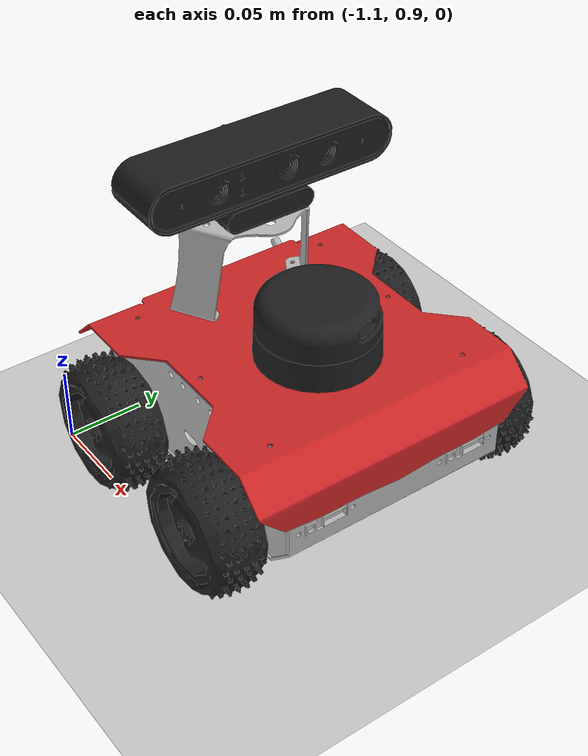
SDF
<sdf version="1.7">
 <world name="default">
  <model name="ground_plane">
   <static>1</static>
   <link name="link">
    <collision name="collision">
     <geometry><plane><normal>0 0 1</normal><size>100 100</size></plane></geometry>
     <surface>
      <contact><collide_bitmask>65535</collide_bitmask></contact>
      <friction><ode><mu>100</mu><mu2>50</mu2></ode></friction>
     </surface>
    </collision>
    <visual name="visual">
     <cast_shadows>0</cast_shadows>
     <geometry><plane><normal>0 0 1</normal><size>100 100</size></plane></geometry>
     <material>
      <script><uri>file://media/materials/scripts/gazebo.material</uri><name>Gazebo/Grey</name></script>
     </material>
    </visual>
   </link>
  </model>
  <model name="Robot2">
   <link name="base_link">
    <inertial>
     <pose>-0 0 0.04003 0 -0 0</pose>
     <mass>5.01002</mass>
     <inertia>
      <ixx>0.0100024</ixx>
      <ixy>0.01</ixy>
      <ixz>3.8397e-08</ixz>
      <iyy>0.0100025</iyy>
      <iyz>0.01</iyz>
      <izz>0.01</izz>
     </inertia>
    </inertial>
    <collision name="base_link_fixed_joint_lump__body_link_collision">
     <pose>0 0 0.02 0 -0 0</pose>
     <geometry><box><size>0.2 0.15 0.04</size></box></geometry>
    </collision>
    <collision name="base_link_fixed_joint_lump__camera_link_collision_1">
     <pose>-0.01 0 0.18 0 -0 0</pose>
     <geometry><box><size>0.001 0.001 0.001</size></box></geometry>
    </collision>
    <collision name="base_link_fixed_joint_lump__laser_collision_2">
     <pose>0.02 0 0.058 1.5707 0 1.56682</pose>
     <geometry>
      <mesh>
       <scale>0.001 0.001 0.001</scale>
       <uri>/home/rhys/catkin_ws/src/husarion_ws/src/rosbot_ros/src/rosbot_description/meshes/rplidar.stl</uri>
      </mesh>
     </geometry>
    </collision>
    <visual name="base_link_fixed_joint_lump__body_link_visual">
     <pose>0 0 -0.02 1.5707 0 1.5707</pose>
     <geometry>
      <mesh>
       <scale>0.001 0.001 0.001</scale>
       <uri>/home/rhys/catkin_ws/src/husarion_ws/src/rosbot_ros/src/rosbot_description/meshes/box.stl</uri>
      </mesh>
     </geometry>
    </visual>
    <visual name="base_link_fixed_joint_lump__camera_link_visual_1">
     <pose>-0.04 0 0.15 1.5707 0 1.5707</pose>
     <geometry>
      <mesh>
       <scale>0.001 0.001 0.001</scale>
       <uri>/home/rhys/catkin_ws/src/husarion_ws/src/rosbot_ros/src/rosbot_description/meshes/astra.stl</uri>
      </mesh>
     </geometry>
     <material>
      <script><name>Gazebo/Black</name><uri>file://media/materials/scripts/gazebo.material</uri></script>
     </material>
    </visual>
    <visual name="base_link_fixed_joint_lump__laser_visual_2">
     <pose>0.02 0 0.058 1.5707 0 1.56682</pose>
     <geometry>
      <mesh>
       <scale>0.001 0.001 0.001</scale>
       <uri>/home/rhys/catkin_ws/src/husarion_ws/src/rosbot_ros/src/rosbot_description/meshes/rplidar.stl</uri>
      </mesh>
     </geometry>
     <material>
      <script><name>Gazebo/Black</name><uri>file://media/materials/scripts/gazebo.material</uri></script>
     </material>
    </visual>
    <visual name="base_link_fixed_joint_lump__top_visual_3">
     <pose>0 0 0.055 1.5707 0 1.5707</pose>
     <geometry>
      <mesh>
       <scale>0.001 0.001 0.001</scale>
       <uri>/home/rhys/catkin_ws/src/husarion_ws/src/rosbot_ros/src/rosbot_description/meshes/upper.stl</uri>
      </mesh>
     </geometry>
     <material>
      <script><name>Gazebo/Red</name><uri>file://media/materials/scripts/gazebo.material</uri></script>
     </material>
    </visual>
    <sensor name="openni_camera_camera" type="depth">
     <always_on>1</always_on>
     <visualize>1</visualize>
     <camera>
      <horizontal_fov>1.047</horizontal_fov>
      <image><width>640</width><height>480</height><format>R8G8B8</format></image>
      <depth_camera><output>depths</output></depth_camera>
      <clip><near>0.1</near><far>100</far></clip>
     </camera>
     <plugin name="kinect_controller" filename="libgazebo_ros_openni_kinect.so">
      <alwaysOn>1</alwaysOn>
      <updateRate>10.0</updateRate>
      <cameraName>camera</cameraName>
      <frameName>camera_depth_frame</frameName>
      <imageTopicName>rgb/image_raw</imageTopicName>
      <depthImageTopicName>depth/image_raw</depthImageTopicName>
      <pointCloudTopicName>depth/points</pointCloudTopicName>
      <cameraInfoTopicName>rgb/camera_info</cameraInfoTopicName>
      <depthImageCameraInfoTopicName>depth/camera_info</depthImageCameraInfoTopicName>
      <pointCloudCutoff>0.4</pointCloudCutoff>
      <hackBaseline>0.07</hackBaseline>
      <distortionK1>0.0</distortionK1>
      <distortionK2>0.0</distortionK2>
      <distortionK3>0.0</distortionK3>
      <distortionT1>0.0</distortionT1>
      <distortionT2>0.0</distortionT2>
      <CxPrime>0.0</CxPrime>
      <Cx>0.0</Cx>
      <Cy>0.0</Cy>
      <focalLength>0.0</focalLength>
      <robotNamespace>/robot2/</robotNamespace>
     </plugin>
     <pose>-0.03 0 0.18 0 -0 0</pose>
    </sensor>
    <sensor name="range_fl" type="ray">
     <update_rate>5</update_rate>
     <ray>
      <scan>
       <horizontal>
        <samples>5</samples>
        <resolution>1</resolution>
        <min_angle>-0.05</min_angle>
        <max_angle>0.05</max_angle>
       </horizontal>
       <vertical>
        <samples>5</samples>
        <resolution>1</resolution>
        <min_angle>-0.05</min_angle>
        <max_angle>0.05</max_angle>
       </vertical>
      </scan>
      <range><min>0.01</min><max>0.9</max><resolution>0.01</resolution></range>
     </ray>
     <plugin name="gazebo_ros_range" filename="libgazebo_ros_range.so">
      <gaussianNoise>0.005</gaussianNoise>
      <alwaysOn>1</alwaysOn>
      <updateRate>5</updateRate>
      <topicName>range/fl</topicName>
      <frameName>range_fl</frameName>
      <fov>0.1</fov>
      <radiation>ultrasound</radiation>
      <robotNamespace>/robot2/</robotNamespace>
     </plugin>
     <pose>0.1 0.05 0.01 0 -0 0.13</pose>
    </sensor>
    <sensor name="range_fr" type="ray">
     <update_rate>5</update_rate>
     <ray>
      <scan>
       <horizontal>
        <samples>5</samples>
        <resolution>1</resolution>
        <min_angle>-0.05</min_angle>
        <max_angle>0.05</max_angle>
       </horizontal>
       <vertical>
        <samples>5</samples>
        <resolution>1</resolution>
        <min_angle>-0.05</min_angle>
        <max_angle>0.05</max_angle>
       </vertical>
      </scan>
      <range><min>0.01</min><max>0.9</max><resolution>0.01</resolution></range>
     </ray>
     <plugin name="gazebo_ros_range" filename="libgazebo_ros_range.so">
      <gaussianNoise>0.005</gaussianNoise>
      <alwaysOn>1</alwaysOn>
      <updateRate>5</updateRate>
      <topicName>range/fr</topicName>
      <frameName>range_fr</frameName>
      <fov>0.1</fov>
      <radiation>ultrasound</radiation>
      <robotNamespace>/robot2/</robotNamespace>
     </plugin>
     <pose>0.1 -0.05 0.01 0 0 -0.13</pose>
    </sensor>
    <sensor name="range_rl" type="ray">
     <update_rate>5</update_rate>
     <ray>
      <scan>
       <horizontal>
        <samples>5</samples>
        <resolution>1</resolution>
        <min_angle>-0.05</min_angle>
        <max_angle>0.05</max_angle>
       </horizontal>
       <vertical>
        <samples>5</samples>
        <resolution>1</resolution>
        <min_angle>-0.05</min_angle>
        <max_angle>0.05</max_angle>
       </vertical>
      </scan>
      <range><min>0.01</min><max>0.9</max><resolution>0.01</resolution></range>
     </ray>
     <plugin name="gazebo_ros_range" filename="libgazebo_ros_range.so">
      <gaussianNoise>0.005</gaussianNoise>
      <alwaysOn>1</alwaysOn>
      <updateRate>5</updateRate>
      <topicName>range/rl</topicName>
      <frameName>range_rl</frameName>
      <fov>0.1</fov>
      <radiation>ultrasound</radiation>
      <robotNamespace>/robot2/</robotNamespace>
     </plugin>
     <pose>-0.1 0.05 0.01 0 -0 3.01</pose>
    </sensor>
    <sensor name="range_rr" type="ray">
     <update_rate>5</update_rate>
     <ray>
      <scan>
       <horizontal>
        <samples>5</samples>
        <resolution>1</resolution>
        <min_angle>-0.05</min_angle>
        <max_angle>0.05</max_angle>
       </horizontal>
       <vertical>
        <samples>5</samples>
        <resolution>1</resolution>
        <min_angle>-0.05</min_angle>
        <max_angle>0.05</max_angle>
       </vertical>
      </scan>
      <range><min>0.01</min><max>0.9</max><resolution>0.01</resolution></range>
     </ray>
     <plugin name="gazebo_ros_range" filename="libgazebo_ros_range.so">
      <gaussianNoise>0.005</gaussianNoise>
      <alwaysOn>1</alwaysOn>
      <updateRate>5</updateRate>
      <topicName>range/rr</topicName>
      <frameName>range_rr</frameName>
      <fov>0.1</fov>
      <radiation>ultrasound</radiation>
      <robotNamespace>/robot2/</robotNamespace>
     </plugin>
     <pose>-0.1 -0.05 0.01 0 -0 -3.01319</pose>
    </sensor>
    <sensor name="head_rplidar_sensor" type="ray">
     <visualize>0</visualize>
     <update_rate>40</update_rate>
     <ray>
      <scan>
       <horizontal>
        <samples>720</samples>
        <resolution>1</resolution>
        <min_angle>-3.14159</min_angle>
        <max_angle>3.14159</max_angle>
       </horizontal>
       <vertical><samples>1</samples><min_angle>0</min_angle><max_angle>0</max_angle></vertical>
      </scan>
      <range><min>0.2</min><max>12</max><resolution>0.01</resolution></range>
      <noise><type>gaussian</type><mean>0</mean><stddev>0.01</stddev></noise>
     </ray>
     <plugin name="gazebo_ros_head_rplidar_controller" filename="libgazebo_ros_laser.so">
      <topicName>scan</topicName>
      <frameName>laser</frameName>
      <robotNamespace>/robot2/</robotNamespace>
     </plugin>
     <pose>0.02 0 0.058 0 -0 3.14</pose>
    </sensor>
    <sensor name="imu_sensor" type="imu">
     <always_on>1</always_on>
     <update_rate>10</update_rate>
     <visualize>1</visualize>
     <topic>imu</topic>
     <plugin name="imu_plugin" filename="libgazebo_ros_imu_sensor.so">
      <topicName>imu</topicName>
      <bodyName>imu_link</bodyName>
      <updateRateHZ>10.0</updateRateHZ>
      <gaussianNoise>0.0</gaussianNoise>
      <xyzOffset>0 0 0</xyzOffset>
      <rpyOffset>0 0 0</rpyOffset>
      <frameName>imu_link</frameName>
      <robotNamespace>/robot2/</robotNamespace>
     </plugin>
    </sensor>
   </link>
   <joint name="front_left_wheel_hinge" type="revolute">
    <pose relative_to="base_link">0.05 0.11 0 0 -0 0</pose>
    <parent>base_link</parent>
    <child>front_left_wheel</child>
    <axis>
     <xyz>0 1 0</xyz>
     <limit><effort>1</effort><velocity>10</velocity><lower>-1e+16</lower><upper>1e+16</upper></limit>
     <dynamics><spring_reference>0</spring_reference><spring_stiffness>0</spring_stiffness></dynamics>
    </axis>
   </joint>
   <link name="front_left_wheel">
    <pose relative_to="front_left_wheel_hinge">0 0 0 0 -0 0</pose>
    <inertial>
     <pose>0 0 0 -0 1.5707 1.5707</pose>
     <mass>0.5</mass>
     <inertia><ixx>0.001</ixx><ixy>0</ixy><ixz>0</ixz><iyy>0.001</iyy><iyz>0</iyz><izz>0.001</izz></inertia>
    </inertial>
    <collision name="front_left_wheel_collision">
     <pose>0 -0.014 0 1.5708 -0 0</pose>
     <geometry><cylinder><length>0.036</length><radius>0.04</radius></cylinder></geometry>
    </collision>
    <visual name="front_left_wheel_visual">
     <pose>0 0 0 0 -0 1.5707</pose>
     <geometry>
      <mesh>
       <scale>0.001 0.001 0.001</scale>
       <uri>/home/rhys/catkin_ws/src/husarion_ws/src/rosbot_ros/src/rosbot_description/meshes/wheel.stl</uri>
      </mesh>
     </geometry>
     <material>
      <script><name>Gazebo/Black</name><uri>file://media/materials/scripts/gazebo.material</uri></script>
     </material>
    </visual>
   </link>
   <joint name="front_right_wheel_hinge" type="revolute">
    <pose relative_to="base_link">0.05 -0.11 0 0 -0 0</pose>
    <parent>base_link</parent>
    <child>front_right_wheel</child>
    <axis>
     <xyz>0 1 0</xyz>
     <limit><effort>1</effort><velocity>10</velocity><lower>-1e+16</lower><upper>1e+16</upper></limit>
     <dynamics><spring_reference>0</spring_reference><spring_stiffness>0</spring_stiffness></dynamics>
    </axis>
   </joint>
   <link name="front_right_wheel">
    <pose relative_to="front_right_wheel_hinge">0 0 0 0 -0 0</pose>
    <inertial>
     <pose>0 0 0 -0 1.5707 1.5707</pose>
     <mass>0.5</mass>
     <inertia><ixx>0.001</ixx><ixy>0</ixy><ixz>0</ixz><iyy>0.001</iyy><iyz>0</iyz><izz>0.001</izz></inertia>
    </inertial>
    <collision name="front_right_wheel_collision">
     <pose>0 0.014 0 1.5708 -0 0</pose>
     <geometry><cylinder><length>0.036</length><radius>0.04</radius></cylinder></geometry>
    </collision>
    <visual name="front_right_wheel_visual">
     <pose>0 0 0 0 0 -1.5707</pose>
     <geometry>
      <mesh>
       <scale>0.001 0.001 0.001</scale>
       <uri>/home/rhys/catkin_ws/src/husarion_ws/src/rosbot_ros/src/rosbot_description/meshes/wheel.stl</uri>
      </mesh>
     </geometry>
     <material>
      <script><name>Gazebo/Black</name><uri>file://media/materials/scripts/gazebo.material</uri></script>
     </material>
    </visual>
   </link>
   <joint name="rear_left_wheel_hinge" type="revolute">
    <pose relative_to="base_link">-0.055 0.11 0 0 -0 0</pose>
    <parent>base_link</parent>
    <child>rear_left_wheel</child>
    <axis>
     <xyz>0 1 0</xyz>
     <limit><effort>1</effort><velocity>10</velocity><lower>-1e+16</lower><upper>1e+16</upper></limit>
     <dynamics><spring_reference>0</spring_reference><spring_stiffness>0</spring_stiffness></dynamics>
    </axis>
   </joint>
   <link name="rear_left_wheel">
    <pose relative_to="rear_left_wheel_hinge">0 0 0 0 -0 0</pose>
    <inertial>
     <pose>0 0 0 -0 1.5707 1.5707</pose>
     <mass>0.5</mass>
     <inertia><ixx>0.001</ixx><ixy>0</ixy><ixz>0</ixz><iyy>0.001</iyy><iyz>0</iyz><izz>0.001</izz></inertia>
    </inertial>
    <collision name="rear_left_wheel_collision">
     <pose>0 -0.014 0 1.5708 -0 0</pose>
     <geometry><cylinder><length>0.036</length><radius>0.04</radius></cylinder></geometry>
    </collision>
    <visual name="rear_left_wheel_visual">
     <pose>0 0 0 0 -0 1.5707</pose>
     <geometry>
      <mesh>
       <scale>0.001 0.001 0.001</scale>
       <uri>/home/rhys/catkin_ws/src/husarion_ws/src/rosbot_ros/src/rosbot_description/meshes/wheel.stl</uri>
      </mesh>
     </geometry>
     <material>
      <script><name>Gazebo/Black</name><uri>file://media/materials/scripts/gazebo.material</uri></script>
     </material>
    </visual>
   </link>
   <joint name="rear_right_wheel_hinge" type="revolute">
    <pose relative_to="base_link">-0.055 -0.11 0 0 -0 0</pose>
    <parent>base_link</parent>
    <child>rear_right_wheel</child>
    <axis>
     <xyz>0 1 0</xyz>
     <limit><effort>1</effort><velocity>10</velocity><lower>-1e+16</lower><upper>1e+16</upper></limit>
     <dynamics><spring_reference>0</spring_reference><spring_stiffness>0</spring_stiffness></dynamics>
    </axis>
   </joint>
   <link name="rear_right_wheel">
    <pose relative_to="rear_right_wheel_hinge">0 0 0 0 -0 0</pose>
    <inertial>
     <pose>0 0 0 -0 1.5707 1.5707</pose>
     <mass>0.5</mass>
     <inertia><ixx>0.001</ixx><ixy>0</ixy><ixz>0</ixz><iyy>0.001</iyy><iyz>0</iyz><izz>0.001</izz></inertia>
    </inertial>
    <collision name="rear_right_wheel_collision">
     <pose>0 0.014 0 1.5708 -0 0</pose>
     <geometry><cylinder><length>0.036</length><radius>0.04</radius></cylinder></geometry>
    </collision>
    <visual name="rear_right_wheel_visual">
     <pose>0 0 0 0 0 -1.5707</pose>
     <geometry>
      <mesh>
       <scale>0.001 0.001 0.001</scale>
       <uri>/home/rhys/catkin_ws/src/husarion_ws/src/rosbot_ros/src/rosbot_description/meshes/wheel.stl</uri>
      </mesh>
     </geometry>
     <material>
      <script><name>Gazebo/Black</name><uri>file://media/materials/scripts/gazebo.material</uri></script>
     </material>
    </visual>
   </link>
   <plugin name="skid_steer_drive_controller" filename="libgazebo_ros_skid_steer_drive.so">
    <updateRate>10.0</updateRate>
    <robotBaseFrame>/base_link</robotBaseFrame>
    <wheelSeparation>0.20</wheelSeparation>
    <wheelDiameter>0.08</wheelDiameter>
    <torque>5</torque>
    <leftFrontJoint>front_left_wheel_hinge</leftFrontJoint>
    <rightFrontJoint>front_right_wheel_hinge</rightFrontJoint>
    <leftRearJoint>rear_left_wheel_hinge</leftRearJoint>
    <rightRearJoint>rear_right_wheel_hinge</rightRearJoint>
    <topicName>cmd_vel</topicName>
    <commandTopic>cmd_vel</commandTopic>
    <broadcastTF>1</broadcastTF>
    <odometryTopic>odom</odometryTopic>
    <odometryFrame>/odom</odometryFrame>
    <covariance_x>0.000100</covariance_x>
    <covariance_y>0.000100</covariance_y>
    <covariance_yaw>0.010000</covariance_yaw>
    <robotNamespace>/robot2/</robotNamespace>
   </plugin>
   <static>0</static>
   <plugin name="gazebo_ros_control" filename="libgazebo_ros_control.so">
    <legacyModeNS>1</legacyModeNS>
    <robotNamespace>/robot2/</robotNamespace>
   </plugin>
   <pose>-0.997317 1.00473 0.039995 2e-06 7e-06 -0.011973</pose>
  </model>
 </world>
</sdf>
